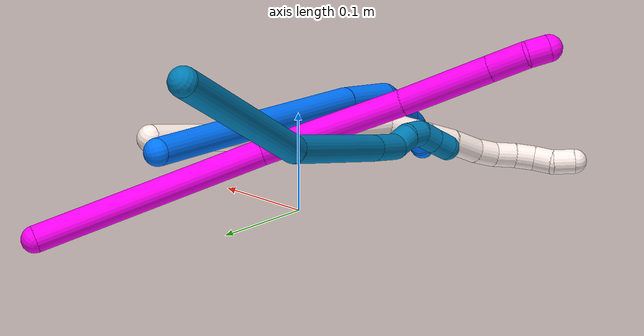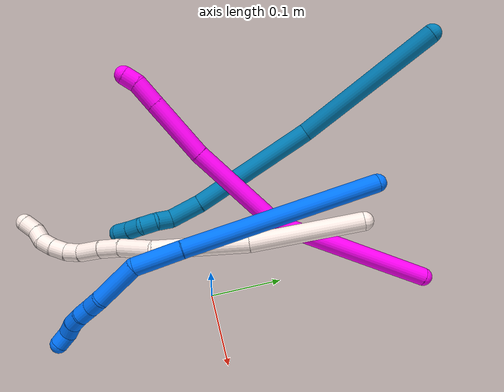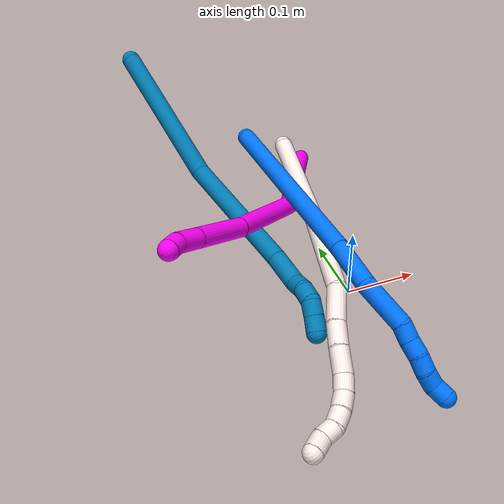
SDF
<sdf version="1.7">
 <world name="default">
  <model name="9">
   <static>0</static>
   <link name="9">
    <collision name="collision-cylinder-e_1_1_4">
     <pose>0.017085 -0.015289 -0.097701 2.98637 0.17108 1.66832</pose>
     <geometry><cylinder><radius>0.0125</radius><length>0.20071</length></cylinder></geometry>
     <surface>
      <friction><ode><mu>1.16</mu><mu2>1.16</mu2><slip1>0</slip1><slip2>0</slip2></ode></friction>
      <contact><ode><kp>1e+06</kp><kd>1</kd><max_vel>0</max_vel><min_depth>0.001</min_depth></ode></contact>
     </surface>
    </collision>
    <visual name="visual-cylinder-e_1_1_4">
     <pose>0.017085 -0.015289 -0.097701 2.98637 0.17108 1.66832</pose>
     <geometry><cylinder><radius>0.0125</radius><length>0.20071</length></cylinder></geometry>
     <material><ambient>0 0.490196 0.709804 1</ambient></material>
    </visual>
    <collision name="collision-cylinder-e_2_4_5">
     <pose>0.04717 -0.065221 -0.273331 2.72329 0.15127 0.685827</pose>
     <geometry><cylinder><radius>0.0125</radius><length>0.172536</length></cylinder></geometry>
     <surface>
      <friction><ode><mu>1.16</mu><mu2>1.16</mu2><slip1>0</slip1><slip2>0</slip2></ode></friction>
      <contact><ode><kp>1e+06</kp><kd>1</kd><max_vel>0</max_vel><min_depth>0.001</min_depth></ode></contact>
     </surface>
    </collision>
    <visual name="visual-cylinder-e_2_4_5">
     <pose>0.04717 -0.065221 -0.273331 2.72329 0.15127 0.685827</pose>
     <geometry><cylinder><radius>0.0125</radius><length>0.172536</length></cylinder></geometry>
     <material><ambient>0 0.490196 0.709804 1</ambient></material>
    </visual>
    <collision name="collision-cylinder-e_3_5_6">
     <pose>0.061273 -0.109335 -0.371508 2.70406 0.049309 0.220931</pose>
     <geometry><cylinder><radius>0.0125</radius><length>0.04476</length></cylinder></geometry>
     <surface>
      <friction><ode><mu>1.16</mu><mu2>1.16</mu2><slip1>0</slip1><slip2>0</slip2></ode></friction>
      <contact><ode><kp>1e+06</kp><kd>1</kd><max_vel>0</max_vel><min_depth>0.001</min_depth></ode></contact>
     </surface>
    </collision>
    <visual name="visual-cylinder-e_3_5_6">
     <pose>0.061273 -0.109335 -0.371508 2.70406 0.049309 0.220931</pose>
     <geometry><cylinder><radius>0.0125</radius><length>0.04476</length></cylinder></geometry>
     <material><ambient>0 0.490196 0.709804 1</ambient></material>
    </visual>
    <collision name="collision-cylinder-e_4_6_7">
     <pose>0.060551 -0.126906 -0.39811 2.23607 -0.175492 -0.357809</pose>
     <geometry><cylinder><radius>0.0125</radius><length>0.020914</length></cylinder></geometry>
     <surface>
      <friction><ode><mu>1.16</mu><mu2>1.16</mu2><slip1>0</slip1><slip2>0</slip2></ode></friction>
      <contact><ode><kp>1e+06</kp><kd>1</kd><max_vel>0</max_vel><min_depth>0.001</min_depth></ode></contact>
     </surface>
    </collision>
    <visual name="visual-cylinder-e_4_6_7">
     <pose>0.060551 -0.126906 -0.39811 2.23607 -0.175492 -0.357809</pose>
     <geometry><cylinder><radius>0.0125</radius><length>0.020914</length></cylinder></geometry>
     <material><ambient>0 0.490196 0.709804 1</ambient></material>
    </visual>
    <collision name="collision-cylinder-e_5_7_8">
     <pose>0.057478 -0.140244 -0.413355 2.60913 -0.12027 -0.434586</pose>
     <geometry><cylinder><radius>0.0125</radius><length>0.020784</length></cylinder></geometry>
     <surface>
      <friction><ode><mu>1.16</mu><mu2>1.16</mu2><slip1>0</slip1><slip2>0</slip2></ode></friction>
      <contact><ode><kp>1e+06</kp><kd>1</kd><max_vel>0</max_vel><min_depth>0.001</min_depth></ode></contact>
     </surface>
    </collision>
    <visual name="visual-cylinder-e_5_7_8">
     <pose>0.057478 -0.140244 -0.413355 2.60913 -0.12027 -0.434586</pose>
     <geometry><cylinder><radius>0.0125</radius><length>0.020784</length></cylinder></geometry>
     <material><ambient>0 0.490196 0.709804 1</ambient></material>
    </visual>
    <collision name="collision-cylinder-e_6_8_9">
     <pose>0.05447 -0.145685 -0.432166 3.12112 -0.175664 -2.91017</pose>
     <geometry><cylinder><radius>0.0125</radius><length>0.02016</length></cylinder></geometry>
     <surface>
      <friction><ode><mu>1.16</mu><mu2>1.16</mu2><slip1>0</slip1><slip2>0</slip2></ode></friction>
      <contact><ode><kp>1e+06</kp><kd>1</kd><max_vel>0</max_vel><min_depth>0.001</min_depth></ode></contact>
     </surface>
    </collision>
    <visual name="visual-cylinder-e_6_8_9">
     <pose>0.05447 -0.145685 -0.432166 3.12112 -0.175664 -2.91017</pose>
     <geometry><cylinder><radius>0.0125</radius><length>0.02016</length></cylinder></geometry>
     <material><ambient>0 0.490196 0.709804 1</ambient></material>
    </visual>
    <collision name="collision-cylinder-e_7_9_2">
     <pose>0.050379 -0.146068 -0.451882 3.1232 -0.233489 -2.98506</pose>
     <geometry><cylinder><radius>0.0125</radius><length>0.020137</length></cylinder></geometry>
     <surface>
      <friction><ode><mu>1.16</mu><mu2>1.16</mu2><slip1>0</slip1><slip2>0</slip2></ode></friction>
      <contact><ode><kp>1e+06</kp><kd>1</kd><max_vel>0</max_vel><min_depth>0.001</min_depth></ode></contact>
     </surface>
    </collision>
    <visual name="visual-cylinder-e_7_9_2">
     <pose>0.050379 -0.146068 -0.451882 3.1232 -0.233489 -2.98506</pose>
     <geometry><cylinder><radius>0.0125</radius><length>0.020137</length></cylinder></geometry>
     <material><ambient>0 0.490196 0.709804 1</ambient></material>
    </visual>
    <collision name="collision-sphere-2">
     <pose>0.048049 -0.146248 -0.461676 0 -0 0</pose>
     <geometry><sphere><radius>0.0125</radius></sphere></geometry>
     <surface>
      <friction><ode><mu>1.16</mu><mu2>1.16</mu2><slip1>0</slip1><slip2>0</slip2></ode></friction>
      <contact><ode><kp>1e+06</kp><kd>1</kd><max_vel>0</max_vel><min_depth>0.001</min_depth></ode></contact>
     </surface>
    </collision>
    <visual name="visual-sphere-2">
     <pose>0.048049 -0.146248 -0.461676 0 -0 0</pose>
     <geometry><sphere><radius>0.0125</radius></sphere></geometry>
     <material><ambient>0 0.490196 0.709804 1</ambient></material>
    </visual>
    <collision name="collision-sphere-9">
     <pose>0.052708 -0.145888 -0.442089 0 -0 0</pose>
     <geometry><sphere><radius>0.0125</radius></sphere></geometry>
     <surface>
      <friction><ode><mu>1.16</mu><mu2>1.16</mu2><slip1>0</slip1><slip2>0</slip2></ode></friction>
      <contact><ode><kp>1e+06</kp><kd>1</kd><max_vel>0</max_vel><min_depth>0.001</min_depth></ode></contact>
     </surface>
    </collision>
    <visual name="visual-sphere-9">
     <pose>0.052708 -0.145888 -0.442089 0 -0 0</pose>
     <geometry><sphere><radius>0.0125</radius></sphere></geometry>
     <material><ambient>0 0.490196 0.709804 1</ambient></material>
    </visual>
    <collision name="collision-sphere-4">
     <pose>0.03417 -0.030578 -0.195402 0 -0 0</pose>
     <geometry><sphere><radius>0.0125</radius></sphere></geometry>
     <surface>
      <friction><ode><mu>1.16</mu><mu2>1.16</mu2><slip1>0</slip1><slip2>0</slip2></ode></friction>
      <contact><ode><kp>1e+06</kp><kd>1</kd><max_vel>0</max_vel><min_depth>0.001</min_depth></ode></contact>
     </surface>
    </collision>
    <visual name="visual-sphere-4">
     <pose>0.03417 -0.030578 -0.195402 0 -0 0</pose>
     <geometry><sphere><radius>0.0125</radius></sphere></geometry>
     <material><ambient>0 0.490196 0.709804 1</ambient></material>
    </visual>
    <collision name="collision-sphere-1">
     <geometry><sphere><radius>0.0125</radius></sphere></geometry>
     <surface>
      <friction><ode><mu>1.16</mu><mu2>1.16</mu2><slip1>0</slip1><slip2>0</slip2></ode></friction>
      <contact><ode><kp>1e+06</kp><kd>1</kd><max_vel>0</max_vel><min_depth>0.001</min_depth></ode></contact>
     </surface>
    </collision>
    <visual name="visual-sphere-1">
     <geometry><sphere><radius>0.0125</radius></sphere></geometry>
     <material><ambient>0 0.490196 0.709804 1</ambient></material>
    </visual>
    <collision name="collision-sphere-8">
     <pose>0.056232 -0.145482 -0.422243 0 -0 0</pose>
     <geometry><sphere><radius>0.0125</radius></sphere></geometry>
     <surface>
      <friction><ode><mu>1.16</mu><mu2>1.16</mu2><slip1>0</slip1><slip2>0</slip2></ode></friction>
      <contact><ode><kp>1e+06</kp><kd>1</kd><max_vel>0</max_vel><min_depth>0.001</min_depth></ode></contact>
     </surface>
    </collision>
    <visual name="visual-sphere-8">
     <pose>0.056232 -0.145482 -0.422243 0 -0 0</pose>
     <geometry><sphere><radius>0.0125</radius></sphere></geometry>
     <material><ambient>0 0.490196 0.709804 1</ambient></material>
    </visual>
    <collision name="collision-sphere-5">
     <pose>0.06017 -0.099864 -0.351261 0 -0 0</pose>
     <geometry><sphere><radius>0.0125</radius></sphere></geometry>
     <surface>
      <friction><ode><mu>1.16</mu><mu2>1.16</mu2><slip1>0</slip1><slip2>0</slip2></ode></friction>
      <contact><ode><kp>1e+06</kp><kd>1</kd><max_vel>0</max_vel><min_depth>0.001</min_depth></ode></contact>
     </surface>
    </collision>
    <visual name="visual-sphere-5">
     <pose>0.06017 -0.099864 -0.351261 0 -0 0</pose>
     <geometry><sphere><radius>0.0125</radius></sphere></geometry>
     <material><ambient>0 0.490196 0.709804 1</ambient></material>
    </visual>
    <collision name="collision-sphere-6">
     <pose>0.062377 -0.118805 -0.391755 0 -0 0</pose>
     <geometry><sphere><radius>0.0125</radius></sphere></geometry>
     <surface>
      <friction><ode><mu>1.16</mu><mu2>1.16</mu2><slip1>0</slip1><slip2>0</slip2></ode></friction>
      <contact><ode><kp>1e+06</kp><kd>1</kd><max_vel>0</max_vel><min_depth>0.001</min_depth></ode></contact>
     </surface>
    </collision>
    <visual name="visual-sphere-6">
     <pose>0.062377 -0.118805 -0.391755 0 -0 0</pose>
     <geometry><sphere><radius>0.0125</radius></sphere></geometry>
     <material><ambient>0 0.490196 0.709804 1</ambient></material>
    </visual>
    <collision name="collision-sphere-7">
     <pose>0.058725 -0.135006 -0.404466 0 -0 0</pose>
     <geometry><sphere><radius>0.0125</radius></sphere></geometry>
     <surface>
      <friction><ode><mu>1.16</mu><mu2>1.16</mu2><slip1>0</slip1><slip2>0</slip2></ode></friction>
      <contact><ode><kp>1e+06</kp><kd>1</kd><max_vel>0</max_vel><min_depth>0.001</min_depth></ode></contact>
     </surface>
    </collision>
    <visual name="visual-sphere-7">
     <pose>0.058725 -0.135006 -0.404466 0 -0 0</pose>
     <geometry><sphere><radius>0.0125</radius></sphere></geometry>
     <material><ambient>0 0.490196 0.709804 1</ambient></material>
    </visual>
    <inertial>
     <pose>0.037768 -0.061325 -0.236253 0 -0 0</pose>
     <mass>0.5</mass>
     <inertia>
      <ixx>0.001221</ixx>
      <ixy>0</ixy>
      <ixz>0</ixz>
      <iyy>0.000715</iyy>
      <iyz>0</iyz>
      <izz>6.7e-05</izz>
     </inertia>
    </inertial>
   </link>
   <pose>-0.201985 0.334051 0.233861 -0.9141 0.237581 0.212656</pose>
  </model>
  <model name="10">
   <static>0</static>
   <link name="10">
    <collision name="collision-cylinder-e_1_1_4">
     <pose>-0.106961 -0.012289 0.023509 0.481689 -1.32769 -0.379651</pose>
     <geometry><cylinder><radius>0.0125</radius><length>0.220403</length></cylinder></geometry>
     <surface>
      <friction><ode><mu>1.16</mu><mu2>1.16</mu2><slip1>0</slip1><slip2>0</slip2></ode></friction>
      <contact><ode><kp>1e+06</kp><kd>1</kd><max_vel>0</max_vel><min_depth>0.001</min_depth></ode></contact>
     </surface>
    </collision>
    <visual name="visual-cylinder-e_1_1_4">
     <pose>-0.106961 -0.012289 0.023509 0.481689 -1.32769 -0.379651</pose>
     <geometry><cylinder><radius>0.0125</radius><length>0.220403</length></cylinder></geometry>
     <material><ambient>1 0 0.964706 1</ambient></material>
    </visual>
    <collision name="collision-cylinder-e_2_4_5">
     <pose>-0.270014 -0.050444 0.077592 0.702152 -0.950759 -0.37268</pose>
     <geometry><cylinder><radius>0.0125</radius><length>0.137843</length></cylinder></geometry>
     <surface>
      <friction><ode><mu>1.16</mu><mu2>1.16</mu2><slip1>0</slip1><slip2>0</slip2></ode></friction>
      <contact><ode><kp>1e+06</kp><kd>1</kd><max_vel>0</max_vel><min_depth>0.001</min_depth></ode></contact>
     </surface>
    </collision>
    <visual name="visual-cylinder-e_2_4_5">
     <pose>-0.270014 -0.050444 0.077592 0.702152 -0.950759 -0.37268</pose>
     <geometry><cylinder><radius>0.0125</radius><length>0.137843</length></cylinder></geometry>
     <material><ambient>1 0 0.964706 1</ambient></material>
    </visual>
    <collision name="collision-cylinder-e_3_5_6">
     <pose>-0.358309 -0.096345 0.12852 0.777523 -0.845282 -0.364352</pose>
     <geometry><cylinder><radius>0.0125</radius><length>0.086085</length></cylinder></geometry>
     <surface>
      <friction><ode><mu>1.16</mu><mu2>1.16</mu2><slip1>0</slip1><slip2>0</slip2></ode></friction>
      <contact><ode><kp>1e+06</kp><kd>1</kd><max_vel>0</max_vel><min_depth>0.001</min_depth></ode></contact>
     </surface>
    </collision>
    <visual name="visual-cylinder-e_3_5_6">
     <pose>-0.358309 -0.096345 0.12852 0.777523 -0.845282 -0.364352</pose>
     <geometry><cylinder><radius>0.0125</radius><length>0.086085</length></cylinder></geometry>
     <material><ambient>1 0 0.964706 1</ambient></material>
    </visual>
    <collision name="collision-cylinder-e_4_6_7">
     <pose>-0.403638 -0.124655 0.157342 0.773843 -0.836848 -0.358493</pose>
     <geometry><cylinder><radius>0.0125</radius><length>0.035356</length></cylinder></geometry>
     <surface>
      <friction><ode><mu>1.16</mu><mu2>1.16</mu2><slip1>0</slip1><slip2>0</slip2></ode></friction>
      <contact><ode><kp>1e+06</kp><kd>1</kd><max_vel>0</max_vel><min_depth>0.001</min_depth></ode></contact>
     </surface>
    </collision>
    <visual name="visual-cylinder-e_4_6_7">
     <pose>-0.403638 -0.124655 0.157342 0.773843 -0.836848 -0.358493</pose>
     <geometry><cylinder><radius>0.0125</radius><length>0.035356</length></cylinder></geometry>
     <material><ambient>1 0 0.964706 1</ambient></material>
    </visual>
    <collision name="collision-cylinder-e_5_7_2">
     <pose>-0.425834 -0.135164 0.1698 0.510413 -1.10386 -0.318579</pose>
     <geometry><cylinder><radius>0.0125</radius><length>0.020313</length></cylinder></geometry>
     <surface>
      <friction><ode><mu>1.16</mu><mu2>1.16</mu2><slip1>0</slip1><slip2>0</slip2></ode></friction>
      <contact><ode><kp>1e+06</kp><kd>1</kd><max_vel>0</max_vel><min_depth>0.001</min_depth></ode></contact>
     </surface>
    </collision>
    <visual name="visual-cylinder-e_5_7_2">
     <pose>-0.425834 -0.135164 0.1698 0.510413 -1.10386 -0.318579</pose>
     <geometry><cylinder><radius>0.0125</radius><length>0.020313</length></cylinder></geometry>
     <material><ambient>1 0 0.964706 1</ambient></material>
    </visual>
    <collision name="collision-sphere-2">
     <pose>-0.434903 -0.137398 0.17379 0 -0 0</pose>
     <geometry><sphere><radius>0.0125</radius></sphere></geometry>
     <surface>
      <friction><ode><mu>1.16</mu><mu2>1.16</mu2><slip1>0</slip1><slip2>0</slip2></ode></friction>
      <contact><ode><kp>1e+06</kp><kd>1</kd><max_vel>0</max_vel><min_depth>0.001</min_depth></ode></contact>
     </surface>
    </collision>
    <visual name="visual-sphere-2">
     <pose>-0.434903 -0.137398 0.17379 0 -0 0</pose>
     <geometry><sphere><radius>0.0125</radius></sphere></geometry>
     <material><ambient>1 0 0.964706 1</ambient></material>
    </visual>
    <collision name="collision-sphere-7">
     <pose>-0.416765 -0.132931 0.165811 0 -0 0</pose>
     <geometry><sphere><radius>0.0125</radius></sphere></geometry>
     <surface>
      <friction><ode><mu>1.16</mu><mu2>1.16</mu2><slip1>0</slip1><slip2>0</slip2></ode></friction>
      <contact><ode><kp>1e+06</kp><kd>1</kd><max_vel>0</max_vel><min_depth>0.001</min_depth></ode></contact>
     </surface>
    </collision>
    <visual name="visual-sphere-7">
     <pose>-0.416765 -0.132931 0.165811 0 -0 0</pose>
     <geometry><sphere><radius>0.0125</radius></sphere></geometry>
     <material><ambient>1 0 0.964706 1</ambient></material>
    </visual>
    <collision name="collision-sphere-6">
     <pose>-0.390512 -0.11638 0.148873 0 -0 0</pose>
     <geometry><sphere><radius>0.0125</radius></sphere></geometry>
     <surface>
      <friction><ode><mu>1.16</mu><mu2>1.16</mu2><slip1>0</slip1><slip2>0</slip2></ode></friction>
      <contact><ode><kp>1e+06</kp><kd>1</kd><max_vel>0</max_vel><min_depth>0.001</min_depth></ode></contact>
     </surface>
    </collision>
    <visual name="visual-sphere-6">
     <pose>-0.390512 -0.11638 0.148873 0 -0 0</pose>
     <geometry><sphere><radius>0.0125</radius></sphere></geometry>
     <material><ambient>1 0 0.964706 1</ambient></material>
    </visual>
    <collision name="collision-sphere-5">
     <pose>-0.326107 -0.07631 0.108167 0 -0 0</pose>
     <geometry><sphere><radius>0.0125</radius></sphere></geometry>
     <surface>
      <friction><ode><mu>1.16</mu><mu2>1.16</mu2><slip1>0</slip1><slip2>0</slip2></ode></friction>
      <contact><ode><kp>1e+06</kp><kd>1</kd><max_vel>0</max_vel><min_depth>0.001</min_depth></ode></contact>
     </surface>
    </collision>
    <visual name="visual-sphere-5">
     <pose>-0.326107 -0.07631 0.108167 0 -0 0</pose>
     <geometry><sphere><radius>0.0125</radius></sphere></geometry>
     <material><ambient>1 0 0.964706 1</ambient></material>
    </visual>
    <collision name="collision-sphere-1">
     <geometry><sphere><radius>0.0125</radius></sphere></geometry>
     <surface>
      <friction><ode><mu>1.16</mu><mu2>1.16</mu2><slip1>0</slip1><slip2>0</slip2></ode></friction>
      <contact><ode><kp>1e+06</kp><kd>1</kd><max_vel>0</max_vel><min_depth>0.001</min_depth></ode></contact>
     </surface>
    </collision>
    <visual name="visual-sphere-1">
     <geometry><sphere><radius>0.0125</radius></sphere></geometry>
     <material><ambient>1 0 0.964706 1</ambient></material>
    </visual>
    <collision name="collision-sphere-4">
     <pose>-0.213922 -0.024579 0.047018 0 -0 0</pose>
     <geometry><sphere><radius>0.0125</radius></sphere></geometry>
     <surface>
      <friction><ode><mu>1.16</mu><mu2>1.16</mu2><slip1>0</slip1><slip2>0</slip2></ode></friction>
      <contact><ode><kp>1e+06</kp><kd>1</kd><max_vel>0</max_vel><min_depth>0.001</min_depth></ode></contact>
     </surface>
    </collision>
    <visual name="visual-sphere-4">
     <pose>-0.213922 -0.024579 0.047018 0 -0 0</pose>
     <geometry><sphere><radius>0.0125</radius></sphere></geometry>
     <material><ambient>1 0 0.964706 1</ambient></material>
    </visual>
    <inertial>
     <pose>-0.22912 -0.050218 0.071906 0 -0 0</pose>
     <mass>0.5</mass>
     <inertia>
      <ixx>0.000185</ixx>
      <ixy>0</ixy>
      <ixz>0</ixz>
      <iyy>0.000994</iyy>
      <iyz>0</iyz>
      <izz>0.001331</izz>
     </inertia>
    </inertial>
   </link>
   <pose>0.049186 0.288382 0.033849 -2.01969 0.273874 1.33828</pose>
  </model>
  <model name="11">
   <static>0</static>
   <link name="11">
    <collision name="collision-cylinder-e_1_1_4">
     <pose>0.017229 -0.068421 -0.02538 1.92601 0.231841 0.331703</pose>
     <geometry><cylinder><radius>0.0125</radius><length>0.149966</length></cylinder></geometry>
     <surface>
      <friction><ode><mu>1.16</mu><mu2>1.16</mu2><slip1>0</slip1><slip2>0</slip2></ode></friction>
      <contact><ode><kp>1e+06</kp><kd>1</kd><max_vel>0</max_vel><min_depth>0.001</min_depth></ode></contact>
     </surface>
    </collision>
    <visual name="visual-cylinder-e_1_1_4">
     <pose>0.017229 -0.068421 -0.02538 1.92601 0.231841 0.331703</pose>
     <geometry><cylinder><radius>0.0125</radius><length>0.149966</length></cylinder></geometry>
     <material><ambient>1 0.933333 0.909804 1</ambient></material>
    </visual>
    <collision name="collision-cylinder-e_2_4_5">
     <pose>0.047965 -0.198371 -0.064014 1.78296 0.211398 0.261266</pose>
     <geometry><cylinder><radius>0.0125</radius><length>0.128746</length></cylinder></geometry>
     <surface>
      <friction><ode><mu>1.16</mu><mu2>1.16</mu2><slip1>0</slip1><slip2>0</slip2></ode></friction>
      <contact><ode><kp>1e+06</kp><kd>1</kd><max_vel>0</max_vel><min_depth>0.001</min_depth></ode></contact>
     </surface>
    </collision>
    <visual name="visual-cylinder-e_2_4_5">
     <pose>0.047965 -0.198371 -0.064014 1.78296 0.211398 0.261266</pose>
     <geometry><cylinder><radius>0.0125</radius><length>0.128746</length></cylinder></geometry>
     <material><ambient>1 0.933333 0.909804 1</ambient></material>
    </visual>
    <collision name="collision-cylinder-e_3_5_6">
     <pose>0.058382 -0.28261 -0.084907 1.89528 -0.12826 -0.178237</pose>
     <geometry><cylinder><radius>0.0125</radius><length>0.048319</length></cylinder></geometry>
     <surface>
      <friction><ode><mu>1.16</mu><mu2>1.16</mu2><slip1>0</slip1><slip2>0</slip2></ode></friction>
      <contact><ode><kp>1e+06</kp><kd>1</kd><max_vel>0</max_vel><min_depth>0.001</min_depth></ode></contact>
     </surface>
    </collision>
    <visual name="visual-cylinder-e_3_5_6">
     <pose>0.058382 -0.28261 -0.084907 1.89528 -0.12826 -0.178237</pose>
     <geometry><cylinder><radius>0.0125</radius><length>0.048319</length></cylinder></geometry>
     <material><ambient>1 0.933333 0.909804 1</ambient></material>
    </visual>
    <collision name="collision-cylinder-e_4_6_7">
     <pose>0.05475 -0.319584 -0.098596 1.97194 -0.034945 -0.052773</pose>
     <geometry><cylinder><radius>0.0125</radius><length>0.031004</length></cylinder></geometry>
     <surface>
      <friction><ode><mu>1.16</mu><mu2>1.16</mu2><slip1>0</slip1><slip2>0</slip2></ode></friction>
      <contact><ode><kp>1e+06</kp><kd>1</kd><max_vel>0</max_vel><min_depth>0.001</min_depth></ode></contact>
     </surface>
    </collision>
    <visual name="visual-cylinder-e_4_6_7">
     <pose>0.05475 -0.319584 -0.098596 1.97194 -0.034945 -0.052773</pose>
     <geometry><cylinder><radius>0.0125</radius><length>0.031004</length></cylinder></geometry>
     <material><ambient>1 0.933333 0.909804 1</ambient></material>
    </visual>
    <collision name="collision-cylinder-e_5_7_8">
     <pose>0.053754 -0.348818 -0.11287 2.07316 -0.026592 -0.044945</pose>
     <geometry><cylinder><radius>0.0125</radius><length>0.034177</length></cylinder></geometry>
     <surface>
      <friction><ode><mu>1.16</mu><mu2>1.16</mu2><slip1>0</slip1><slip2>0</slip2></ode></friction>
      <contact><ode><kp>1e+06</kp><kd>1</kd><max_vel>0</max_vel><min_depth>0.001</min_depth></ode></contact>
     </surface>
    </collision>
    <visual name="visual-cylinder-e_5_7_8">
     <pose>0.053754 -0.348818 -0.11287 2.07316 -0.026592 -0.044945</pose>
     <geometry><cylinder><radius>0.0125</radius><length>0.034177</length></cylinder></geometry>
     <material><ambient>1 0.933333 0.909804 1</ambient></material>
    </visual>
    <collision name="collision-cylinder-e_6_8_9">
     <pose>0.052401 -0.374434 -0.124407 1.87238 -0.080426 -0.109195</pose>
     <geometry><cylinder><radius>0.0125</radius><length>0.022366</length></cylinder></geometry>
     <surface>
      <friction><ode><mu>1.16</mu><mu2>1.16</mu2><slip1>0</slip1><slip2>0</slip2></ode></friction>
      <contact><ode><kp>1e+06</kp><kd>1</kd><max_vel>0</max_vel><min_depth>0.001</min_depth></ode></contact>
     </surface>
    </collision>
    <visual name="visual-cylinder-e_6_8_9">
     <pose>0.052401 -0.374434 -0.124407 1.87238 -0.080426 -0.109195</pose>
     <geometry><cylinder><radius>0.0125</radius><length>0.022366</length></cylinder></geometry>
     <material><ambient>1 0.933333 0.909804 1</ambient></material>
    </visual>
    <collision name="collision-cylinder-e_7_9_10">
     <pose>0.049731 -0.396114 -0.128281 1.62179 -0.158995 -0.16728</pose>
     <geometry><cylinder><radius>0.0125</radius><length>0.022382</length></cylinder></geometry>
     <surface>
      <friction><ode><mu>1.16</mu><mu2>1.16</mu2><slip1>0</slip1><slip2>0</slip2></ode></friction>
      <contact><ode><kp>1e+06</kp><kd>1</kd><max_vel>0</max_vel><min_depth>0.001</min_depth></ode></contact>
     </surface>
    </collision>
    <visual name="visual-cylinder-e_7_9_10">
     <pose>0.049731 -0.396114 -0.128281 1.62179 -0.158995 -0.16728</pose>
     <geometry><cylinder><radius>0.0125</radius><length>0.022382</length></cylinder></geometry>
     <material><ambient>1 0.933333 0.909804 1</ambient></material>
    </visual>
    <collision name="collision-cylinder-e_8_10_11">
     <pose>0.044506 -0.4171 -0.128819 1.56829 -0.333985 -0.333163</pose>
     <geometry><cylinder><radius>0.0125</radius><length>0.021066</length></cylinder></geometry>
     <surface>
      <friction><ode><mu>1.16</mu><mu2>1.16</mu2><slip1>0</slip1><slip2>0</slip2></ode></friction>
      <contact><ode><kp>1e+06</kp><kd>1</kd><max_vel>0</max_vel><min_depth>0.001</min_depth></ode></contact>
     </surface>
    </collision>
    <visual name="visual-cylinder-e_8_10_11">
     <pose>0.044506 -0.4171 -0.128819 1.56829 -0.333985 -0.333163</pose>
     <geometry><cylinder><radius>0.0125</radius><length>0.021066</length></cylinder></geometry>
     <material><ambient>1 0.933333 0.909804 1</ambient></material>
    </visual>
    <collision name="collision-cylinder-e_9_11_12">
     <pose>0.034782 -0.434507 -0.12642 1.26249 -0.675643 -0.502733</pose>
     <geometry><cylinder><radius>0.0125</radius><length>0.020056</length></cylinder></geometry>
     <surface>
      <friction><ode><mu>1.16</mu><mu2>1.16</mu2><slip1>0</slip1><slip2>0</slip2></ode></friction>
      <contact><ode><kp>1e+06</kp><kd>1</kd><max_vel>0</max_vel><min_depth>0.001</min_depth></ode></contact>
     </surface>
    </collision>
    <visual name="visual-cylinder-e_9_11_12">
     <pose>0.034782 -0.434507 -0.12642 1.26249 -0.675643 -0.502733</pose>
     <geometry><cylinder><radius>0.0125</radius><length>0.020056</length></cylinder></geometry>
     <material><ambient>1 0.933333 0.909804 1</ambient></material>
    </visual>
    <collision name="collision-cylinder-e_10_12_2">
     <pose>0.025296 -0.45214 -0.121559 1.33123 -0.297736 -0.234428</pose>
     <geometry><cylinder><radius>0.0125</radius><length>0.021917</length></cylinder></geometry>
     <surface>
      <friction><ode><mu>1.16</mu><mu2>1.16</mu2><slip1>0</slip1><slip2>0</slip2></ode></friction>
      <contact><ode><kp>1e+06</kp><kd>1</kd><max_vel>0</max_vel><min_depth>0.001</min_depth></ode></contact>
     </surface>
    </collision>
    <visual name="visual-cylinder-e_10_12_2">
     <pose>0.025296 -0.45214 -0.121559 1.33123 -0.297736 -0.234428</pose>
     <geometry><cylinder><radius>0.0125</radius><length>0.021917</length></cylinder></geometry>
     <material><ambient>1 0.933333 0.909804 1</ambient></material>
    </visual>
    <collision name="collision-sphere-2">
     <pose>0.022081 -0.462318 -0.119074 0 -0 0</pose>
     <geometry><sphere><radius>0.0125</radius></sphere></geometry>
     <surface>
      <friction><ode><mu>1.16</mu><mu2>1.16</mu2><slip1>0</slip1><slip2>0</slip2></ode></friction>
      <contact><ode><kp>1e+06</kp><kd>1</kd><max_vel>0</max_vel><min_depth>0.001</min_depth></ode></contact>
     </surface>
    </collision>
    <visual name="visual-sphere-2">
     <pose>0.022081 -0.462318 -0.119074 0 -0 0</pose>
     <geometry><sphere><radius>0.0125</radius></sphere></geometry>
     <material><ambient>1 0.933333 0.909804 1</ambient></material>
    </visual>
    <collision name="collision-sphere-12">
     <pose>0.02851 -0.441963 -0.124045 0 -0 0</pose>
     <geometry><sphere><radius>0.0125</radius></sphere></geometry>
     <surface>
      <friction><ode><mu>1.16</mu><mu2>1.16</mu2><slip1>0</slip1><slip2>0</slip2></ode></friction>
      <contact><ode><kp>1e+06</kp><kd>1</kd><max_vel>0</max_vel><min_depth>0.001</min_depth></ode></contact>
     </surface>
    </collision>
    <visual name="visual-sphere-12">
     <pose>0.02851 -0.441963 -0.124045 0 -0 0</pose>
     <geometry><sphere><radius>0.0125</radius></sphere></geometry>
     <material><ambient>1 0.933333 0.909804 1</ambient></material>
    </visual>
    <collision name="collision-sphere-11">
     <pose>0.041054 -0.427051 -0.128794 0 -0 0</pose>
     <geometry><sphere><radius>0.0125</radius></sphere></geometry>
     <surface>
      <friction><ode><mu>1.16</mu><mu2>1.16</mu2><slip1>0</slip1><slip2>0</slip2></ode></friction>
      <contact><ode><kp>1e+06</kp><kd>1</kd><max_vel>0</max_vel><min_depth>0.001</min_depth></ode></contact>
     </surface>
    </collision>
    <visual name="visual-sphere-11">
     <pose>0.041054 -0.427051 -0.128794 0 -0 0</pose>
     <geometry><sphere><radius>0.0125</radius></sphere></geometry>
     <material><ambient>1 0.933333 0.909804 1</ambient></material>
    </visual>
    <collision name="collision-sphere-10">
     <pose>0.047959 -0.407149 -0.128844 0 -0 0</pose>
     <geometry><sphere><radius>0.0125</radius></sphere></geometry>
     <surface>
      <friction><ode><mu>1.16</mu><mu2>1.16</mu2><slip1>0</slip1><slip2>0</slip2></ode></friction>
      <contact><ode><kp>1e+06</kp><kd>1</kd><max_vel>0</max_vel><min_depth>0.001</min_depth></ode></contact>
     </surface>
    </collision>
    <visual name="visual-sphere-10">
     <pose>0.047959 -0.407149 -0.128844 0 -0 0</pose>
     <geometry><sphere><radius>0.0125</radius></sphere></geometry>
     <material><ambient>1 0.933333 0.909804 1</ambient></material>
    </visual>
    <collision name="collision-sphere-9">
     <pose>0.051503 -0.385078 -0.127718 0 -0 0</pose>
     <geometry><sphere><radius>0.0125</radius></sphere></geometry>
     <surface>
      <friction><ode><mu>1.16</mu><mu2>1.16</mu2><slip1>0</slip1><slip2>0</slip2></ode></friction>
      <contact><ode><kp>1e+06</kp><kd>1</kd><max_vel>0</max_vel><min_depth>0.001</min_depth></ode></contact>
     </surface>
    </collision>
    <visual name="visual-sphere-9">
     <pose>0.051503 -0.385078 -0.127718 0 -0 0</pose>
     <geometry><sphere><radius>0.0125</radius></sphere></geometry>
     <material><ambient>1 0.933333 0.909804 1</ambient></material>
    </visual>
    <collision name="collision-sphere-4">
     <pose>0.034458 -0.136843 -0.050761 0 -0 0</pose>
     <geometry><sphere><radius>0.0125</radius></sphere></geometry>
     <surface>
      <friction><ode><mu>1.16</mu><mu2>1.16</mu2><slip1>0</slip1><slip2>0</slip2></ode></friction>
      <contact><ode><kp>1e+06</kp><kd>1</kd><max_vel>0</max_vel><min_depth>0.001</min_depth></ode></contact>
     </surface>
    </collision>
    <visual name="visual-sphere-4">
     <pose>0.034458 -0.136843 -0.050761 0 -0 0</pose>
     <geometry><sphere><radius>0.0125</radius></sphere></geometry>
     <material><ambient>1 0.933333 0.909804 1</ambient></material>
    </visual>
    <collision name="collision-sphere-1">
     <geometry><sphere><radius>0.0125</radius></sphere></geometry>
     <surface>
      <friction><ode><mu>1.16</mu><mu2>1.16</mu2><slip1>0</slip1><slip2>0</slip2></ode></friction>
      <contact><ode><kp>1e+06</kp><kd>1</kd><max_vel>0</max_vel><min_depth>0.001</min_depth></ode></contact>
     </surface>
    </collision>
    <visual name="visual-sphere-1">
     <geometry><sphere><radius>0.0125</radius></sphere></geometry>
     <material><ambient>1 0.933333 0.909804 1</ambient></material>
    </visual>
    <collision name="collision-sphere-8">
     <pose>0.0533 -0.36379 -0.121096 0 -0 0</pose>
     <geometry><sphere><radius>0.0125</radius></sphere></geometry>
     <surface>
      <friction><ode><mu>1.16</mu><mu2>1.16</mu2><slip1>0</slip1><slip2>0</slip2></ode></friction>
      <contact><ode><kp>1e+06</kp><kd>1</kd><max_vel>0</max_vel><min_depth>0.001</min_depth></ode></contact>
     </surface>
    </collision>
    <visual name="visual-sphere-8">
     <pose>0.0533 -0.36379 -0.121096 0 -0 0</pose>
     <geometry><sphere><radius>0.0125</radius></sphere></geometry>
     <material><ambient>1 0.933333 0.909804 1</ambient></material>
    </visual>
    <collision name="collision-sphere-5">
     <pose>0.061472 -0.2599 -0.077268 0 -0 0</pose>
     <geometry><sphere><radius>0.0125</radius></sphere></geometry>
     <surface>
      <friction><ode><mu>1.16</mu><mu2>1.16</mu2><slip1>0</slip1><slip2>0</slip2></ode></friction>
      <contact><ode><kp>1e+06</kp><kd>1</kd><max_vel>0</max_vel><min_depth>0.001</min_depth></ode></contact>
     </surface>
    </collision>
    <visual name="visual-sphere-5">
     <pose>0.061472 -0.2599 -0.077268 0 -0 0</pose>
     <geometry><sphere><radius>0.0125</radius></sphere></geometry>
     <material><ambient>1 0.933333 0.909804 1</ambient></material>
    </visual>
    <collision name="collision-sphere-6">
     <pose>0.055292 -0.305321 -0.092546 0 -0 0</pose>
     <geometry><sphere><radius>0.0125</radius></sphere></geometry>
     <surface>
      <friction><ode><mu>1.16</mu><mu2>1.16</mu2><slip1>0</slip1><slip2>0</slip2></ode></friction>
      <contact><ode><kp>1e+06</kp><kd>1</kd><max_vel>0</max_vel><min_depth>0.001</min_depth></ode></contact>
     </surface>
    </collision>
    <visual name="visual-sphere-6">
     <pose>0.055292 -0.305321 -0.092546 0 -0 0</pose>
     <geometry><sphere><radius>0.0125</radius></sphere></geometry>
     <material><ambient>1 0.933333 0.909804 1</ambient></material>
    </visual>
    <collision name="collision-sphere-7">
     <pose>0.054209 -0.333846 -0.104645 0 -0 0</pose>
     <geometry><sphere><radius>0.0125</radius></sphere></geometry>
     <surface>
      <friction><ode><mu>1.16</mu><mu2>1.16</mu2><slip1>0</slip1><slip2>0</slip2></ode></friction>
      <contact><ode><kp>1e+06</kp><kd>1</kd><max_vel>0</max_vel><min_depth>0.001</min_depth></ode></contact>
     </surface>
    </collision>
    <visual name="visual-sphere-7">
     <pose>0.054209 -0.333846 -0.104645 0 -0 0</pose>
     <geometry><sphere><radius>0.0125</radius></sphere></geometry>
     <material><ambient>1 0.933333 0.909804 1</ambient></material>
    </visual>
    <inertial>
     <pose>0.039179 -0.231874 -0.073264 0 -0 0</pose>
     <mass>0.5</mass>
     <inertia>
      <ixx>0.000598</ixx>
      <ixy>0</ixy>
      <ixz>0</ixz>
      <iyy>-1.1e-05</iyy>
      <iyz>0</iyz>
      <izz>0.000353</izz>
     </inertia>
    </inertial>
   </link>
   <pose>-0.015936 0.205368 0.122899 -0.000465 -0.507378 -0.476338</pose>
  </model>
  <model name="14">
   <static>0</static>
   <link name="14">
    <collision name="collision-cylinder-e_1_1_4">
     <pose>0.028456 -0.077163 0.106957 0.62497 0.212501 0.068885</pose>
     <geometry><cylinder><radius>0.0125</radius><length>0.269843</length></cylinder></geometry>
     <surface>
      <friction><ode><mu>1.16</mu><mu2>1.16</mu2><slip1>0</slip1><slip2>0</slip2></ode></friction>
      <contact><ode><kp>1e+06</kp><kd>1</kd><max_vel>0</max_vel><min_depth>0.001</min_depth></ode></contact>
     </surface>
    </collision>
    <visual name="visual-cylinder-e_1_1_4">
     <pose>0.028456 -0.077163 0.106957 0.62497 0.212501 0.068885</pose>
     <geometry><cylinder><radius>0.0125</radius><length>0.269843</length></cylinder></geometry>
     <material><ambient>0 0.462745 1 1</ambient></material>
    </visual>
    <collision name="collision-cylinder-e_2_4_5">
     <pose>0.061145 -0.174466 0.239421 0.66837 0.129551 0.045037</pose>
     <geometry><cylinder><radius>0.0125</radius><length>0.065546</length></cylinder></geometry>
     <surface>
      <friction><ode><mu>1.16</mu><mu2>1.16</mu2><slip1>0</slip1><slip2>0</slip2></ode></friction>
      <contact><ode><kp>1e+06</kp><kd>1</kd><max_vel>0</max_vel><min_depth>0.001</min_depth></ode></contact>
     </surface>
    </collision>
    <visual name="visual-cylinder-e_2_4_5">
     <pose>0.061145 -0.174466 0.239421 0.66837 0.129551 0.045037</pose>
     <geometry><cylinder><radius>0.0125</radius><length>0.065546</length></cylinder></geometry>
     <material><ambient>0 0.462745 1 1</ambient></material>
    </visual>
    <collision name="collision-cylinder-e_3_5_6">
     <pose>0.066729 -0.222541 0.278805 1.10971 0.043262 0.026817</pose>
     <geometry><cylinder><radius>0.0125</radius><length>0.062445</length></cylinder></geometry>
     <surface>
      <friction><ode><mu>1.16</mu><mu2>1.16</mu2><slip1>0</slip1><slip2>0</slip2></ode></friction>
      <contact><ode><kp>1e+06</kp><kd>1</kd><max_vel>0</max_vel><min_depth>0.001</min_depth></ode></contact>
     </surface>
    </collision>
    <visual name="visual-cylinder-e_3_5_6">
     <pose>0.066729 -0.222541 0.278805 1.10971 0.043262 0.026817</pose>
     <geometry><cylinder><radius>0.0125</radius><length>0.062445</length></cylinder></geometry>
     <material><ambient>0 0.462745 1 1</ambient></material>
    </visual>
    <collision name="collision-cylinder-e_4_6_7">
     <pose>0.065099 -0.25951 0.297226 1.10487 -0.28673 -0.177512</pose>
     <geometry><cylinder><radius>0.0125</radius><length>0.021082</length></cylinder></geometry>
     <surface>
      <friction><ode><mu>1.16</mu><mu2>1.16</mu2><slip1>0</slip1><slip2>0</slip2></ode></friction>
      <contact><ode><kp>1e+06</kp><kd>1</kd><max_vel>0</max_vel><min_depth>0.001</min_depth></ode></contact>
     </surface>
    </collision>
    <visual name="visual-cylinder-e_4_6_7">
     <pose>0.065099 -0.25951 0.297226 1.10487 -0.28673 -0.177512</pose>
     <geometry><cylinder><radius>0.0125</radius><length>0.021082</length></cylinder></geometry>
     <material><ambient>0 0.462745 1 1</ambient></material>
    </visual>
    <collision name="collision-cylinder-e_5_7_8">
     <pose>0.060644 -0.277395 0.306705 1.06206 -0.144326 -0.084859</pose>
     <geometry><cylinder><radius>0.0125</radius><length>0.020484</length></cylinder></geometry>
     <surface>
      <friction><ode><mu>1.16</mu><mu2>1.16</mu2><slip1>0</slip1><slip2>0</slip2></ode></friction>
      <contact><ode><kp>1e+06</kp><kd>1</kd><max_vel>0</max_vel><min_depth>0.001</min_depth></ode></contact>
     </surface>
    </collision>
    <visual name="visual-cylinder-e_5_7_8">
     <pose>0.060644 -0.277395 0.306705 1.06206 -0.144326 -0.084859</pose>
     <geometry><cylinder><radius>0.0125</radius><length>0.020484</length></cylinder></geometry>
     <material><ambient>0 0.462745 1 1</ambient></material>
    </visual>
    <collision name="collision-cylinder-e_6_8_9">
     <pose>0.055805 -0.295171 0.315452 1.16724 -0.333945 -0.221681</pose>
     <geometry><cylinder><radius>0.0125</radius><length>0.020542</length></cylinder></geometry>
     <surface>
      <friction><ode><mu>1.16</mu><mu2>1.16</mu2><slip1>0</slip1><slip2>0</slip2></ode></friction>
      <contact><ode><kp>1e+06</kp><kd>1</kd><max_vel>0</max_vel><min_depth>0.001</min_depth></ode></contact>
     </surface>
    </collision>
    <visual name="visual-cylinder-e_6_8_9">
     <pose>0.055805 -0.295171 0.315452 1.16724 -0.333945 -0.221681</pose>
     <geometry><cylinder><radius>0.0125</radius><length>0.020542</length></cylinder></geometry>
     <material><ambient>0 0.462745 1 1</ambient></material>
    </visual>
    <collision name="collision-cylinder-e_7_9_10">
     <pose>0.049413 -0.313511 0.320859 1.40281 -0.306788 -0.259723</pose>
     <geometry><cylinder><radius>0.0125</radius><length>0.020037</length></cylinder></geometry>
     <surface>
      <friction><ode><mu>1.16</mu><mu2>1.16</mu2><slip1>0</slip1><slip2>0</slip2></ode></friction>
      <contact><ode><kp>1e+06</kp><kd>1</kd><max_vel>0</max_vel><min_depth>0.001</min_depth></ode></contact>
     </surface>
    </collision>
    <visual name="visual-cylinder-e_7_9_10">
     <pose>0.049413 -0.313511 0.320859 1.40281 -0.306788 -0.259723</pose>
     <geometry><cylinder><radius>0.0125</radius><length>0.020037</length></cylinder></geometry>
     <material><ambient>0 0.462745 1 1</ambient></material>
    </visual>
    <collision name="collision-cylinder-e_8_10_2">
     <pose>0.047431 -0.332255 0.325938 1.21353 0.104457 0.072539</pose>
     <geometry><cylinder><radius>0.0125</radius><length>0.020021</length></cylinder></geometry>
     <surface>
      <friction><ode><mu>1.16</mu><mu2>1.16</mu2><slip1>0</slip1><slip2>0</slip2></ode></friction>
      <contact><ode><kp>1e+06</kp><kd>1</kd><max_vel>0</max_vel><min_depth>0.001</min_depth></ode></contact>
     </surface>
    </collision>
    <visual name="visual-cylinder-e_8_10_2">
     <pose>0.047431 -0.332255 0.325938 1.21353 0.104457 0.072539</pose>
     <geometry><cylinder><radius>0.0125</radius><length>0.020021</length></cylinder></geometry>
     <material><ambient>0 0.462745 1 1</ambient></material>
    </visual>
    <collision name="collision-sphere-2">
     <pose>0.048475 -0.341582 0.32942 0 -0 0</pose>
     <geometry><sphere><radius>0.0125</radius></sphere></geometry>
     <surface>
      <friction><ode><mu>1.16</mu><mu2>1.16</mu2><slip1>0</slip1><slip2>0</slip2></ode></friction>
      <contact><ode><kp>1e+06</kp><kd>1</kd><max_vel>0</max_vel><min_depth>0.001</min_depth></ode></contact>
     </surface>
    </collision>
    <visual name="visual-sphere-2">
     <pose>0.048475 -0.341582 0.32942 0 -0 0</pose>
     <geometry><sphere><radius>0.0125</radius></sphere></geometry>
     <material><ambient>0 0.462745 1 1</ambient></material>
    </visual>
    <collision name="collision-sphere-10">
     <pose>0.046387 -0.322927 0.322456 0 -0 0</pose>
     <geometry><sphere><radius>0.0125</radius></sphere></geometry>
     <surface>
      <friction><ode><mu>1.16</mu><mu2>1.16</mu2><slip1>0</slip1><slip2>0</slip2></ode></friction>
      <contact><ode><kp>1e+06</kp><kd>1</kd><max_vel>0</max_vel><min_depth>0.001</min_depth></ode></contact>
     </surface>
    </collision>
    <visual name="visual-sphere-10">
     <pose>0.046387 -0.322927 0.322456 0 -0 0</pose>
     <geometry><sphere><radius>0.0125</radius></sphere></geometry>
     <material><ambient>0 0.462745 1 1</ambient></material>
    </visual>
    <collision name="collision-sphere-9">
     <pose>0.052438 -0.304095 0.319262 0 -0 0</pose>
     <geometry><sphere><radius>0.0125</radius></sphere></geometry>
     <surface>
      <friction><ode><mu>1.16</mu><mu2>1.16</mu2><slip1>0</slip1><slip2>0</slip2></ode></friction>
      <contact><ode><kp>1e+06</kp><kd>1</kd><max_vel>0</max_vel><min_depth>0.001</min_depth></ode></contact>
     </surface>
    </collision>
    <visual name="visual-sphere-9">
     <pose>0.052438 -0.304095 0.319262 0 -0 0</pose>
     <geometry><sphere><radius>0.0125</radius></sphere></geometry>
     <material><ambient>0 0.462745 1 1</ambient></material>
    </visual>
    <collision name="collision-sphere-4">
     <pose>0.056911 -0.154326 0.213915 0 -0 0</pose>
     <geometry><sphere><radius>0.0125</radius></sphere></geometry>
     <surface>
      <friction><ode><mu>1.16</mu><mu2>1.16</mu2><slip1>0</slip1><slip2>0</slip2></ode></friction>
      <contact><ode><kp>1e+06</kp><kd>1</kd><max_vel>0</max_vel><min_depth>0.001</min_depth></ode></contact>
     </surface>
    </collision>
    <visual name="visual-sphere-4">
     <pose>0.056911 -0.154326 0.213915 0 -0 0</pose>
     <geometry><sphere><radius>0.0125</radius></sphere></geometry>
     <material><ambient>0 0.462745 1 1</ambient></material>
    </visual>
    <collision name="collision-sphere-1">
     <geometry><sphere><radius>0.0125</radius></sphere></geometry>
     <surface>
      <friction><ode><mu>1.16</mu><mu2>1.16</mu2><slip1>0</slip1><slip2>0</slip2></ode></friction>
      <contact><ode><kp>1e+06</kp><kd>1</kd><max_vel>0</max_vel><min_depth>0.001</min_depth></ode></contact>
     </surface>
    </collision>
    <visual name="visual-sphere-1">
     <geometry><sphere><radius>0.0125</radius></sphere></geometry>
     <material><ambient>0 0.462745 1 1</ambient></material>
    </visual>
    <collision name="collision-sphere-8">
     <pose>0.059171 -0.286247 0.311641 0 -0 0</pose>
     <geometry><sphere><radius>0.0125</radius></sphere></geometry>
     <surface>
      <friction><ode><mu>1.16</mu><mu2>1.16</mu2><slip1>0</slip1><slip2>0</slip2></ode></friction>
      <contact><ode><kp>1e+06</kp><kd>1</kd><max_vel>0</max_vel><min_depth>0.001</min_depth></ode></contact>
     </surface>
    </collision>
    <visual name="visual-sphere-8">
     <pose>0.059171 -0.286247 0.311641 0 -0 0</pose>
     <geometry><sphere><radius>0.0125</radius></sphere></geometry>
     <material><ambient>0 0.462745 1 1</ambient></material>
    </visual>
    <collision name="collision-sphere-5">
     <pose>0.065379 -0.194605 0.264926 0 -0 0</pose>
     <geometry><sphere><radius>0.0125</radius></sphere></geometry>
     <surface>
      <friction><ode><mu>1.16</mu><mu2>1.16</mu2><slip1>0</slip1><slip2>0</slip2></ode></friction>
      <contact><ode><kp>1e+06</kp><kd>1</kd><max_vel>0</max_vel><min_depth>0.001</min_depth></ode></contact>
     </surface>
    </collision>
    <visual name="visual-sphere-5">
     <pose>0.065379 -0.194605 0.264926 0 -0 0</pose>
     <geometry><sphere><radius>0.0125</radius></sphere></geometry>
     <material><ambient>0 0.462745 1 1</ambient></material>
    </visual>
    <collision name="collision-sphere-6">
     <pose>0.06808 -0.250477 0.292684 0 -0 0</pose>
     <geometry><sphere><radius>0.0125</radius></sphere></geometry>
     <surface>
      <friction><ode><mu>1.16</mu><mu2>1.16</mu2><slip1>0</slip1><slip2>0</slip2></ode></friction>
      <contact><ode><kp>1e+06</kp><kd>1</kd><max_vel>0</max_vel><min_depth>0.001</min_depth></ode></contact>
     </surface>
    </collision>
    <visual name="visual-sphere-6">
     <pose>0.06808 -0.250477 0.292684 0 -0 0</pose>
     <geometry><sphere><radius>0.0125</radius></sphere></geometry>
     <material><ambient>0 0.462745 1 1</ambient></material>
    </visual>
    <collision name="collision-sphere-7">
     <pose>0.062117 -0.268543 0.301768 0 -0 0</pose>
     <geometry><sphere><radius>0.0125</radius></sphere></geometry>
     <surface>
      <friction><ode><mu>1.16</mu><mu2>1.16</mu2><slip1>0</slip1><slip2>0</slip2></ode></friction>
      <contact><ode><kp>1e+06</kp><kd>1</kd><max_vel>0</max_vel><min_depth>0.001</min_depth></ode></contact>
     </surface>
    </collision>
    <visual name="visual-sphere-7">
     <pose>0.062117 -0.268543 0.301768 0 -0 0</pose>
     <geometry><sphere><radius>0.0125</radius></sphere></geometry>
     <material><ambient>0 0.462745 1 1</ambient></material>
    </visual>
    <inertial>
     <pose>0.043108 -0.152609 0.187896 0 -0 0</pose>
     <mass>0.5</mass>
     <inertia>
      <ixx>0.001778</ixx>
      <ixy>0</ixy>
      <ixz>0</ixz>
      <iyy>0.001466</iyy>
      <iyz>0</iyz>
      <izz>0.000661</izz>
     </inertia>
    </inertial>
   </link>
   <pose>-0.062086 0.238251 0.127477 1.29717 -0.881432 -0.30174</pose>
  </model>
 </world>
</sdf>
